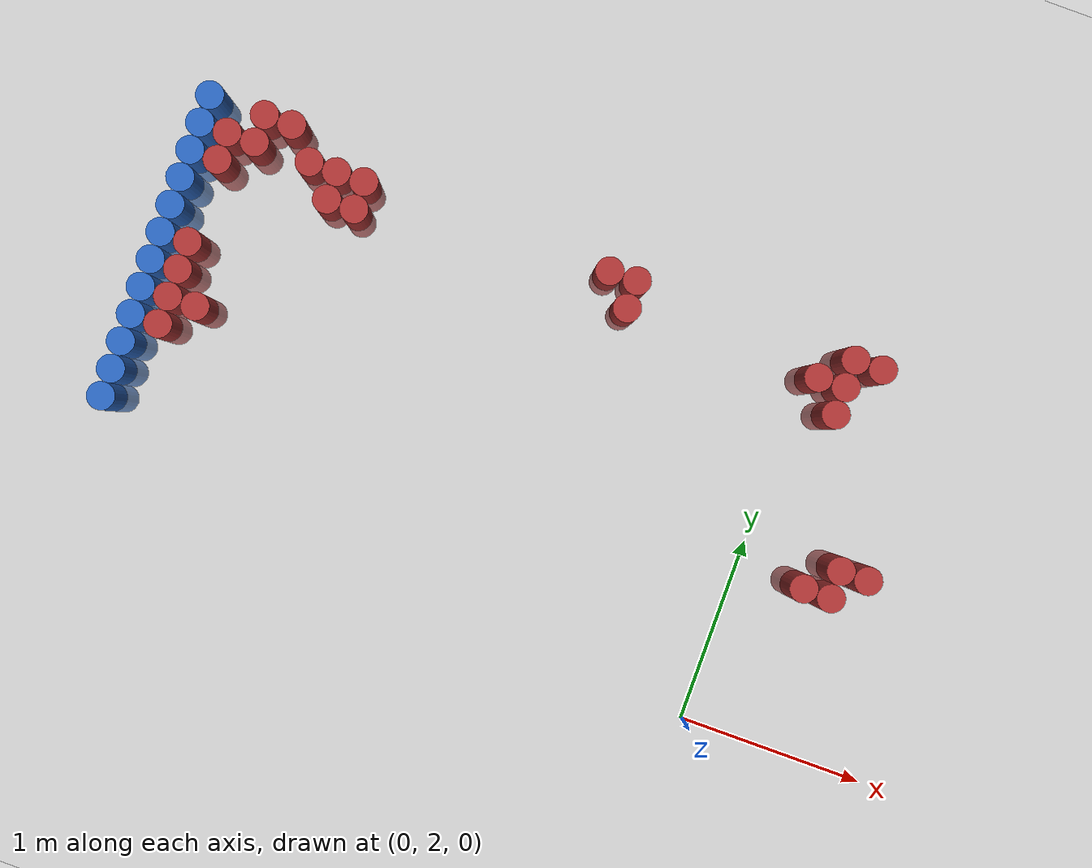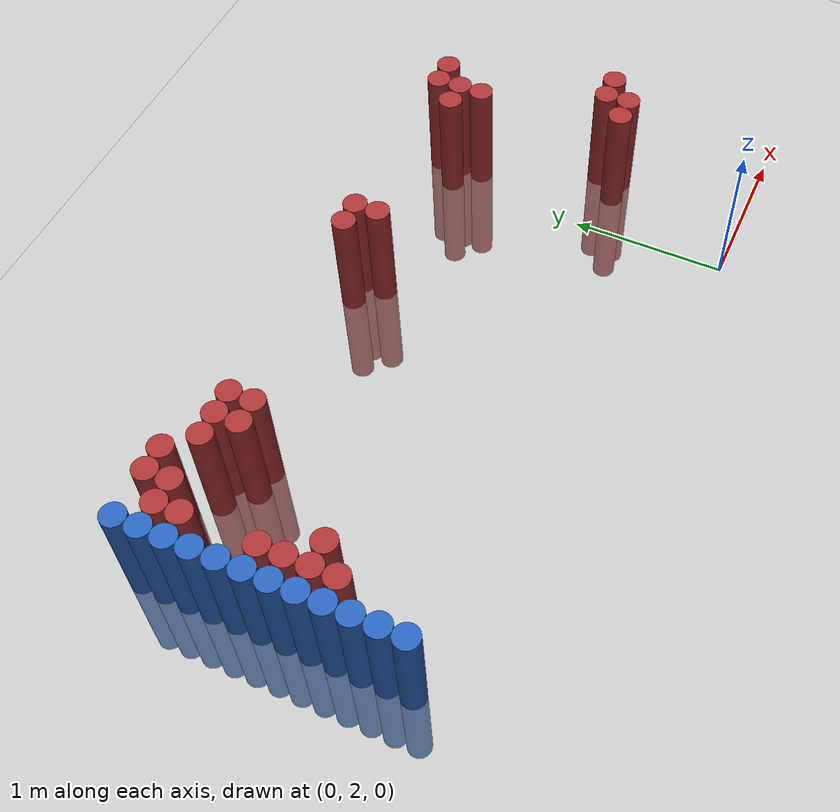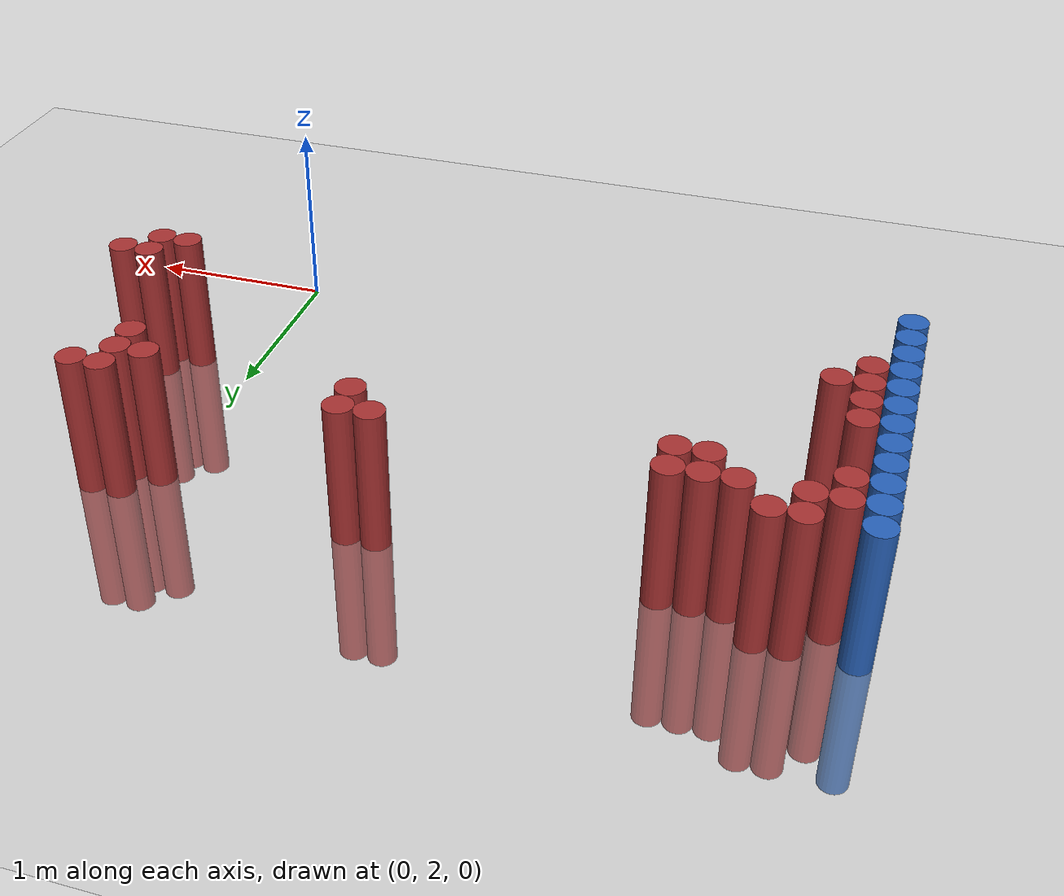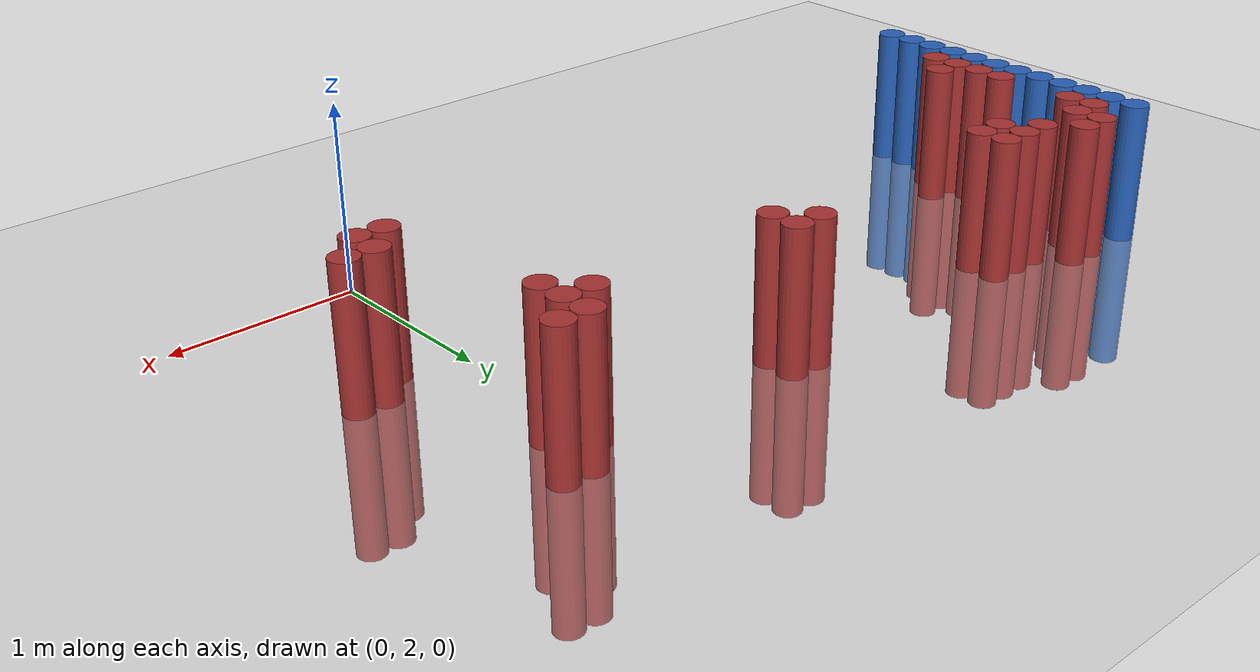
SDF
<sdf version="1.6">
 <world name="default">
  <model name="ground_plane">
   <static>1</static>
   <link name="link">
    <collision name="collision">
     <geometry><plane><normal>0 0 1</normal><size>100 100</size></plane></geometry>
     <surface><friction><ode><mu>100</mu><mu2>50</mu2></ode></friction></surface>
    </collision>
    <visual name="visual">
     <cast_shadows>0</cast_shadows>
     <geometry><plane><normal>0 0 1</normal><size>100 100</size></plane></geometry>
     <material>
      <script><uri>file://media/materials/scripts/gazebo.material</uri><name>Gazebo/Grey</name></script>
     </material>
    </visual>
   </link>
  </model>
  <model name="unit_cylinder_149">
   <static>1</static>
   <pose>-3.425000 2.575000 0.000000 0.000000 0.000000 0.000000</pose>
   <link name="link">
    <inertial>
     <mass>1</mass>
     <inertia><ixx>0.145833</ixx><ixy>0</ixy><ixz>0</ixz><iyy>0.145833</iyy><iyz>0</iyz><izz>0.125</izz></inertia>
    </inertial>
    <collision name="collision">
     <geometry><cylinder><radius>0.075000</radius><length>1.5</length></cylinder></geometry>
    </collision>
    <visual name="visual">
     <geometry><cylinder><radius>0.075000</radius><length>1.5</length></cylinder></geometry>
     <material>
      <ambient>0.152000 0.379000 0.720000 1</ambient>
      <diffuse>0.152000 0.379000 0.720000 1</diffuse>
     </material>
     <material>
      <script><name>Gazebo/Grey</name><uri>file://media/materials/scripts/gazebo.material</uri></script>
     </material>
    </visual>
   </link>
  </model>
  <model name="unit_cylinder_151">
   <static>1</static>
   <pose>-3.425000 2.725000 0.000000 0.000000 0.000000 0.000000</pose>
   <link name="link">
    <inertial>
     <mass>1</mass>
     <inertia><ixx>0.145833</ixx><ixy>0</ixy><ixz>0</ixz><iyy>0.145833</iyy><iyz>0</iyz><izz>0.125</izz></inertia>
    </inertial>
    <collision name="collision">
     <geometry><cylinder><radius>0.075000</radius><length>1.5</length></cylinder></geometry>
    </collision>
    <visual name="visual">
     <geometry><cylinder><radius>0.075000</radius><length>1.5</length></cylinder></geometry>
     <material>
      <ambient>0.152000 0.379000 0.720000 1</ambient>
      <diffuse>0.152000 0.379000 0.720000 1</diffuse>
     </material>
     <material>
      <script><name>Gazebo/Grey</name><uri>file://media/materials/scripts/gazebo.material</uri></script>
     </material>
    </visual>
   </link>
  </model>
  <model name="unit_cylinder_153">
   <static>1</static>
   <pose>-3.425000 2.875000 0.000000 0.000000 0.000000 0.000000</pose>
   <link name="link">
    <inertial>
     <mass>1</mass>
     <inertia><ixx>0.145833</ixx><ixy>0</ixy><ixz>0</ixz><iyy>0.145833</iyy><iyz>0</iyz><izz>0.125</izz></inertia>
    </inertial>
    <collision name="collision">
     <geometry><cylinder><radius>0.075000</radius><length>1.5</length></cylinder></geometry>
    </collision>
    <visual name="visual">
     <geometry><cylinder><radius>0.075000</radius><length>1.5</length></cylinder></geometry>
     <material>
      <ambient>0.152000 0.379000 0.720000 1</ambient>
      <diffuse>0.152000 0.379000 0.720000 1</diffuse>
     </material>
     <material>
      <script><name>Gazebo/Grey</name><uri>file://media/materials/scripts/gazebo.material</uri></script>
     </material>
    </visual>
   </link>
  </model>
  <model name="unit_cylinder_155">
   <static>1</static>
   <pose>-3.425000 3.025000 0.000000 0.000000 0.000000 0.000000</pose>
   <link name="link">
    <inertial>
     <mass>1</mass>
     <inertia><ixx>0.145833</ixx><ixy>0</ixy><ixz>0</ixz><iyy>0.145833</iyy><iyz>0</iyz><izz>0.125</izz></inertia>
    </inertial>
    <collision name="collision">
     <geometry><cylinder><radius>0.075000</radius><length>1.5</length></cylinder></geometry>
    </collision>
    <visual name="visual">
     <geometry><cylinder><radius>0.075000</radius><length>1.5</length></cylinder></geometry>
     <material>
      <ambient>0.152000 0.379000 0.720000 1</ambient>
      <diffuse>0.152000 0.379000 0.720000 1</diffuse>
     </material>
     <material>
      <script><name>Gazebo/Grey</name><uri>file://media/materials/scripts/gazebo.material</uri></script>
     </material>
    </visual>
   </link>
  </model>
  <model name="unit_cylinder_157">
   <static>1</static>
   <pose>-3.425000 3.175000 0.000000 0.000000 0.000000 0.000000</pose>
   <link name="link">
    <inertial>
     <mass>1</mass>
     <inertia><ixx>0.145833</ixx><ixy>0</ixy><ixz>0</ixz><iyy>0.145833</iyy><iyz>0</iyz><izz>0.125</izz></inertia>
    </inertial>
    <collision name="collision">
     <geometry><cylinder><radius>0.075000</radius><length>1.5</length></cylinder></geometry>
    </collision>
    <visual name="visual">
     <geometry><cylinder><radius>0.075000</radius><length>1.5</length></cylinder></geometry>
     <material>
      <ambient>0.152000 0.379000 0.720000 1</ambient>
      <diffuse>0.152000 0.379000 0.720000 1</diffuse>
     </material>
     <material>
      <script><name>Gazebo/Grey</name><uri>file://media/materials/scripts/gazebo.material</uri></script>
     </material>
    </visual>
   </link>
  </model>
  <model name="unit_cylinder_159">
   <static>1</static>
   <pose>-3.425000 3.325000 0.000000 0.000000 0.000000 0.000000</pose>
   <link name="link">
    <inertial>
     <mass>1</mass>
     <inertia><ixx>0.145833</ixx><ixy>0</ixy><ixz>0</ixz><iyy>0.145833</iyy><iyz>0</iyz><izz>0.125</izz></inertia>
    </inertial>
    <collision name="collision">
     <geometry><cylinder><radius>0.075000</radius><length>1.5</length></cylinder></geometry>
    </collision>
    <visual name="visual">
     <geometry><cylinder><radius>0.075000</radius><length>1.5</length></cylinder></geometry>
     <material>
      <ambient>0.152000 0.379000 0.720000 1</ambient>
      <diffuse>0.152000 0.379000 0.720000 1</diffuse>
     </material>
     <material>
      <script><name>Gazebo/Grey</name><uri>file://media/materials/scripts/gazebo.material</uri></script>
     </material>
    </visual>
   </link>
  </model>
  <model name="unit_cylinder_161">
   <static>1</static>
   <pose>-3.425000 3.475000 0.000000 0.000000 0.000000 0.000000</pose>
   <link name="link">
    <inertial>
     <mass>1</mass>
     <inertia><ixx>0.145833</ixx><ixy>0</ixy><ixz>0</ixz><iyy>0.145833</iyy><iyz>0</iyz><izz>0.125</izz></inertia>
    </inertial>
    <collision name="collision">
     <geometry><cylinder><radius>0.075000</radius><length>1.5</length></cylinder></geometry>
    </collision>
    <visual name="visual">
     <geometry><cylinder><radius>0.075000</radius><length>1.5</length></cylinder></geometry>
     <material>
      <ambient>0.152000 0.379000 0.720000 1</ambient>
      <diffuse>0.152000 0.379000 0.720000 1</diffuse>
     </material>
     <material>
      <script><name>Gazebo/Grey</name><uri>file://media/materials/scripts/gazebo.material</uri></script>
     </material>
    </visual>
   </link>
  </model>
  <model name="unit_cylinder_163">
   <static>1</static>
   <pose>-3.425000 3.625000 0.000000 0.000000 0.000000 0.000000</pose>
   <link name="link">
    <inertial>
     <mass>1</mass>
     <inertia><ixx>0.145833</ixx><ixy>0</ixy><ixz>0</ixz><iyy>0.145833</iyy><iyz>0</iyz><izz>0.125</izz></inertia>
    </inertial>
    <collision name="collision">
     <geometry><cylinder><radius>0.075000</radius><length>1.5</length></cylinder></geometry>
    </collision>
    <visual name="visual">
     <geometry><cylinder><radius>0.075000</radius><length>1.5</length></cylinder></geometry>
     <material>
      <ambient>0.152000 0.379000 0.720000 1</ambient>
      <diffuse>0.152000 0.379000 0.720000 1</diffuse>
     </material>
     <material>
      <script><name>Gazebo/Grey</name><uri>file://media/materials/scripts/gazebo.material</uri></script>
     </material>
    </visual>
   </link>
  </model>
  <model name="unit_cylinder_165">
   <static>1</static>
   <pose>-3.425000 3.775000 0.000000 0.000000 0.000000 0.000000</pose>
   <link name="link">
    <inertial>
     <mass>1</mass>
     <inertia><ixx>0.145833</ixx><ixy>0</ixy><ixz>0</ixz><iyy>0.145833</iyy><iyz>0</iyz><izz>0.125</izz></inertia>
    </inertial>
    <collision name="collision">
     <geometry><cylinder><radius>0.075000</radius><length>1.5</length></cylinder></geometry>
    </collision>
    <visual name="visual">
     <geometry><cylinder><radius>0.075000</radius><length>1.5</length></cylinder></geometry>
     <material>
      <ambient>0.152000 0.379000 0.720000 1</ambient>
      <diffuse>0.152000 0.379000 0.720000 1</diffuse>
     </material>
     <material>
      <script><name>Gazebo/Grey</name><uri>file://media/materials/scripts/gazebo.material</uri></script>
     </material>
    </visual>
   </link>
  </model>
  <model name="unit_cylinder_167">
   <static>1</static>
   <pose>-3.425000 3.925000 0.000000 0.000000 0.000000 0.000000</pose>
   <link name="link">
    <inertial>
     <mass>1</mass>
     <inertia><ixx>0.145833</ixx><ixy>0</ixy><ixz>0</ixz><iyy>0.145833</iyy><iyz>0</iyz><izz>0.125</izz></inertia>
    </inertial>
    <collision name="collision">
     <geometry><cylinder><radius>0.075000</radius><length>1.5</length></cylinder></geometry>
    </collision>
    <visual name="visual">
     <geometry><cylinder><radius>0.075000</radius><length>1.5</length></cylinder></geometry>
     <material>
      <ambient>0.152000 0.379000 0.720000 1</ambient>
      <diffuse>0.152000 0.379000 0.720000 1</diffuse>
     </material>
     <material>
      <script><name>Gazebo/Grey</name><uri>file://media/materials/scripts/gazebo.material</uri></script>
     </material>
    </visual>
   </link>
  </model>
  <model name="unit_cylinder_169">
   <static>1</static>
   <pose>-3.425000 4.075000 0.000000 0.000000 0.000000 0.000000</pose>
   <link name="link">
    <inertial>
     <mass>1</mass>
     <inertia><ixx>0.145833</ixx><ixy>0</ixy><ixz>0</ixz><iyy>0.145833</iyy><iyz>0</iyz><izz>0.125</izz></inertia>
    </inertial>
    <collision name="collision">
     <geometry><cylinder><radius>0.075000</radius><length>1.5</length></cylinder></geometry>
    </collision>
    <visual name="visual">
     <geometry><cylinder><radius>0.075000</radius><length>1.5</length></cylinder></geometry>
     <material>
      <ambient>0.152000 0.379000 0.720000 1</ambient>
      <diffuse>0.152000 0.379000 0.720000 1</diffuse>
     </material>
     <material>
      <script><name>Gazebo/Grey</name><uri>file://media/materials/scripts/gazebo.material</uri></script>
     </material>
    </visual>
   </link>
  </model>
  <model name="unit_cylinder_171">
   <static>1</static>
   <pose>-3.425000 4.225000 0.000000 0.000000 0.000000 0.000000</pose>
   <link name="link">
    <inertial>
     <mass>1</mass>
     <inertia><ixx>0.145833</ixx><ixy>0</ixy><ixz>0</ixz><iyy>0.145833</iyy><iyz>0</iyz><izz>0.125</izz></inertia>
    </inertial>
    <collision name="collision">
     <geometry><cylinder><radius>0.075000</radius><length>1.5</length></cylinder></geometry>
    </collision>
    <visual name="visual">
     <geometry><cylinder><radius>0.075000</radius><length>1.5</length></cylinder></geometry>
     <material>
      <ambient>0.152000 0.379000 0.720000 1</ambient>
      <diffuse>0.152000 0.379000 0.720000 1</diffuse>
     </material>
     <material>
      <script><name>Gazebo/Grey</name><uri>file://media/materials/scripts/gazebo.material</uri></script>
     </material>
    </visual>
   </link>
  </model>
  <model name="unit_cylinder_238">
   <static>1</static>
   <pose>-3.425000 2.575000 0.000000 0.000000 0.000000 0.000000</pose>
   <link name="link">
    <inertial>
     <mass>1</mass>
     <inertia><ixx>0.145833</ixx><ixy>0</ixy><ixz>0</ixz><iyy>0.145833</iyy><iyz>0</iyz><izz>0.125</izz></inertia>
    </inertial>
    <collision name="collision">
     <geometry><cylinder><radius>0.075000</radius><length>1.5</length></cylinder></geometry>
    </collision>
    <visual name="visual">
     <geometry><cylinder><radius>0.075000</radius><length>1.5</length></cylinder></geometry>
     <material>
      <ambient>0.152000 0.379000 0.720000 1</ambient>
      <diffuse>0.152000 0.379000 0.720000 1</diffuse>
     </material>
     <material>
      <script><name>Gazebo/Grey</name><uri>file://media/materials/scripts/gazebo.material</uri></script>
     </material>
    </visual>
   </link>
  </model>
  <model name="unit_cylinder_239">
   <static>1</static>
   <pose>-3.425000 2.725000 0.000000 0.000000 0.000000 0.000000</pose>
   <link name="link">
    <inertial>
     <mass>1</mass>
     <inertia><ixx>0.145833</ixx><ixy>0</ixy><ixz>0</ixz><iyy>0.145833</iyy><iyz>0</iyz><izz>0.125</izz></inertia>
    </inertial>
    <collision name="collision">
     <geometry><cylinder><radius>0.075000</radius><length>1.5</length></cylinder></geometry>
    </collision>
    <visual name="visual">
     <geometry><cylinder><radius>0.075000</radius><length>1.5</length></cylinder></geometry>
     <material>
      <ambient>0.152000 0.379000 0.720000 1</ambient>
      <diffuse>0.152000 0.379000 0.720000 1</diffuse>
     </material>
     <material>
      <script><name>Gazebo/Grey</name><uri>file://media/materials/scripts/gazebo.material</uri></script>
     </material>
    </visual>
   </link>
  </model>
  <model name="unit_cylinder_240">
   <static>1</static>
   <pose>-3.425000 2.875000 0.000000 0.000000 0.000000 0.000000</pose>
   <link name="link">
    <inertial>
     <mass>1</mass>
     <inertia><ixx>0.145833</ixx><ixy>0</ixy><ixz>0</ixz><iyy>0.145833</iyy><iyz>0</iyz><izz>0.125</izz></inertia>
    </inertial>
    <collision name="collision">
     <geometry><cylinder><radius>0.075000</radius><length>1.5</length></cylinder></geometry>
    </collision>
    <visual name="visual">
     <geometry><cylinder><radius>0.075000</radius><length>1.5</length></cylinder></geometry>
     <material>
      <ambient>0.152000 0.379000 0.720000 1</ambient>
      <diffuse>0.152000 0.379000 0.720000 1</diffuse>
     </material>
     <material>
      <script><name>Gazebo/Grey</name><uri>file://media/materials/scripts/gazebo.material</uri></script>
     </material>
    </visual>
   </link>
  </model>
  <model name="unit_cylinder_241">
   <static>1</static>
   <pose>-3.425000 3.025000 0.000000 0.000000 0.000000 0.000000</pose>
   <link name="link">
    <inertial>
     <mass>1</mass>
     <inertia><ixx>0.145833</ixx><ixy>0</ixy><ixz>0</ixz><iyy>0.145833</iyy><iyz>0</iyz><izz>0.125</izz></inertia>
    </inertial>
    <collision name="collision">
     <geometry><cylinder><radius>0.075000</radius><length>1.5</length></cylinder></geometry>
    </collision>
    <visual name="visual">
     <geometry><cylinder><radius>0.075000</radius><length>1.5</length></cylinder></geometry>
     <material>
      <ambient>0.152000 0.379000 0.720000 1</ambient>
      <diffuse>0.152000 0.379000 0.720000 1</diffuse>
     </material>
     <material>
      <script><name>Gazebo/Grey</name><uri>file://media/materials/scripts/gazebo.material</uri></script>
     </material>
    </visual>
   </link>
  </model>
  <model name="unit_cylinder_242">
   <static>1</static>
   <pose>-3.425000 3.175000 0.000000 0.000000 0.000000 0.000000</pose>
   <link name="link">
    <inertial>
     <mass>1</mass>
     <inertia><ixx>0.145833</ixx><ixy>0</ixy><ixz>0</ixz><iyy>0.145833</iyy><iyz>0</iyz><izz>0.125</izz></inertia>
    </inertial>
    <collision name="collision">
     <geometry><cylinder><radius>0.075000</radius><length>1.5</length></cylinder></geometry>
    </collision>
    <visual name="visual">
     <geometry><cylinder><radius>0.075000</radius><length>1.5</length></cylinder></geometry>
     <material>
      <ambient>0.152000 0.379000 0.720000 1</ambient>
      <diffuse>0.152000 0.379000 0.720000 1</diffuse>
     </material>
     <material>
      <script><name>Gazebo/Grey</name><uri>file://media/materials/scripts/gazebo.material</uri></script>
     </material>
    </visual>
   </link>
  </model>
  <model name="unit_cylinder_243">
   <static>1</static>
   <pose>-3.425000 3.325000 0.000000 0.000000 0.000000 0.000000</pose>
   <link name="link">
    <inertial>
     <mass>1</mass>
     <inertia><ixx>0.145833</ixx><ixy>0</ixy><ixz>0</ixz><iyy>0.145833</iyy><iyz>0</iyz><izz>0.125</izz></inertia>
    </inertial>
    <collision name="collision">
     <geometry><cylinder><radius>0.075000</radius><length>1.5</length></cylinder></geometry>
    </collision>
    <visual name="visual">
     <geometry><cylinder><radius>0.075000</radius><length>1.5</length></cylinder></geometry>
     <material>
      <ambient>0.152000 0.379000 0.720000 1</ambient>
      <diffuse>0.152000 0.379000 0.720000 1</diffuse>
     </material>
     <material>
      <script><name>Gazebo/Grey</name><uri>file://media/materials/scripts/gazebo.material</uri></script>
     </material>
    </visual>
   </link>
  </model>
  <model name="unit_cylinder_244">
   <static>1</static>
   <pose>-3.425000 3.475000 0.000000 0.000000 0.000000 0.000000</pose>
   <link name="link">
    <inertial>
     <mass>1</mass>
     <inertia><ixx>0.145833</ixx><ixy>0</ixy><ixz>0</ixz><iyy>0.145833</iyy><iyz>0</iyz><izz>0.125</izz></inertia>
    </inertial>
    <collision name="collision">
     <geometry><cylinder><radius>0.075000</radius><length>1.5</length></cylinder></geometry>
    </collision>
    <visual name="visual">
     <geometry><cylinder><radius>0.075000</radius><length>1.5</length></cylinder></geometry>
     <material>
      <ambient>0.152000 0.379000 0.720000 1</ambient>
      <diffuse>0.152000 0.379000 0.720000 1</diffuse>
     </material>
     <material>
      <script><name>Gazebo/Grey</name><uri>file://media/materials/scripts/gazebo.material</uri></script>
     </material>
    </visual>
   </link>
  </model>
  <model name="unit_cylinder_245">
   <static>1</static>
   <pose>-3.425000 3.625000 0.000000 0.000000 0.000000 0.000000</pose>
   <link name="link">
    <inertial>
     <mass>1</mass>
     <inertia><ixx>0.145833</ixx><ixy>0</ixy><ixz>0</ixz><iyy>0.145833</iyy><iyz>0</iyz><izz>0.125</izz></inertia>
    </inertial>
    <collision name="collision">
     <geometry><cylinder><radius>0.075000</radius><length>1.5</length></cylinder></geometry>
    </collision>
    <visual name="visual">
     <geometry><cylinder><radius>0.075000</radius><length>1.5</length></cylinder></geometry>
     <material>
      <ambient>0.152000 0.379000 0.720000 1</ambient>
      <diffuse>0.152000 0.379000 0.720000 1</diffuse>
     </material>
     <material>
      <script><name>Gazebo/Grey</name><uri>file://media/materials/scripts/gazebo.material</uri></script>
     </material>
    </visual>
   </link>
  </model>
  <model name="unit_cylinder_246">
   <static>1</static>
   <pose>-3.425000 3.775000 0.000000 0.000000 0.000000 0.000000</pose>
   <link name="link">
    <inertial>
     <mass>1</mass>
     <inertia><ixx>0.145833</ixx><ixy>0</ixy><ixz>0</ixz><iyy>0.145833</iyy><iyz>0</iyz><izz>0.125</izz></inertia>
    </inertial>
    <collision name="collision">
     <geometry><cylinder><radius>0.075000</radius><length>1.5</length></cylinder></geometry>
    </collision>
    <visual name="visual">
     <geometry><cylinder><radius>0.075000</radius><length>1.5</length></cylinder></geometry>
     <material>
      <ambient>0.152000 0.379000 0.720000 1</ambient>
      <diffuse>0.152000 0.379000 0.720000 1</diffuse>
     </material>
     <material>
      <script><name>Gazebo/Grey</name><uri>file://media/materials/scripts/gazebo.material</uri></script>
     </material>
    </visual>
   </link>
  </model>
  <model name="unit_cylinder_247">
   <static>1</static>
   <pose>-3.425000 3.925000 0.000000 0.000000 0.000000 0.000000</pose>
   <link name="link">
    <inertial>
     <mass>1</mass>
     <inertia><ixx>0.145833</ixx><ixy>0</ixy><ixz>0</ixz><iyy>0.145833</iyy><iyz>0</iyz><izz>0.125</izz></inertia>
    </inertial>
    <collision name="collision">
     <geometry><cylinder><radius>0.075000</radius><length>1.5</length></cylinder></geometry>
    </collision>
    <visual name="visual">
     <geometry><cylinder><radius>0.075000</radius><length>1.5</length></cylinder></geometry>
     <material>
      <ambient>0.152000 0.379000 0.720000 1</ambient>
      <diffuse>0.152000 0.379000 0.720000 1</diffuse>
     </material>
     <material>
      <script><name>Gazebo/Grey</name><uri>file://media/materials/scripts/gazebo.material</uri></script>
     </material>
    </visual>
   </link>
  </model>
  <model name="unit_cylinder_248">
   <static>1</static>
   <pose>-3.425000 4.075000 0.000000 0.000000 0.000000 0.000000</pose>
   <link name="link">
    <inertial>
     <mass>1</mass>
     <inertia><ixx>0.145833</ixx><ixy>0</ixy><ixz>0</ixz><iyy>0.145833</iyy><iyz>0</iyz><izz>0.125</izz></inertia>
    </inertial>
    <collision name="collision">
     <geometry><cylinder><radius>0.075000</radius><length>1.5</length></cylinder></geometry>
    </collision>
    <visual name="visual">
     <geometry><cylinder><radius>0.075000</radius><length>1.5</length></cylinder></geometry>
     <material>
      <ambient>0.152000 0.379000 0.720000 1</ambient>
      <diffuse>0.152000 0.379000 0.720000 1</diffuse>
     </material>
     <material>
      <script><name>Gazebo/Grey</name><uri>file://media/materials/scripts/gazebo.material</uri></script>
     </material>
    </visual>
   </link>
  </model>
  <model name="unit_cylinder_249">
   <static>1</static>
   <pose>-3.425000 4.225000 0.000000 0.000000 0.000000 0.000000</pose>
   <link name="link">
    <inertial>
     <mass>1</mass>
     <inertia><ixx>0.145833</ixx><ixy>0</ixy><ixz>0</ixz><iyy>0.145833</iyy><iyz>0</iyz><izz>0.125</izz></inertia>
    </inertial>
    <collision name="collision">
     <geometry><cylinder><radius>0.075000</radius><length>1.5</length></cylinder></geometry>
    </collision>
    <visual name="visual">
     <geometry><cylinder><radius>0.075000</radius><length>1.5</length></cylinder></geometry>
     <material>
      <ambient>0.152000 0.379000 0.720000 1</ambient>
      <diffuse>0.152000 0.379000 0.720000 1</diffuse>
     </material>
     <material>
      <script><name>Gazebo/Grey</name><uri>file://media/materials/scripts/gazebo.material</uri></script>
     </material>
    </visual>
   </link>
  </model>
  <model name="unit_cylinder_267">
   <static>1</static>
   <pose>-3.275000 3.025000 0.000000 0.000000 0.000000 0.000000</pose>
   <link name="link">
    <inertial>
     <mass>1</mass>
     <inertia><ixx>0.145833</ixx><ixy>0</ixy><ixz>0</ixz><iyy>0.145833</iyy><iyz>0</iyz><izz>0.125</izz></inertia>
    </inertial>
    <collision name="collision">
     <geometry><cylinder><radius>0.075000</radius><length>1.5</length></cylinder></geometry>
    </collision>
    <visual name="visual">
     <geometry><cylinder><radius>0.075000</radius><length>1.5</length></cylinder></geometry>
     <material>
      <ambient>0.648000 0.192000 0.192000 1</ambient>
      <diffuse>0.648000 0.192000 0.192000 1</diffuse>
     </material>
     <material>
      <script><name>Gazebo/Grey</name><uri>file://media/materials/scripts/gazebo.material</uri></script>
     </material>
    </visual>
   </link>
  </model>
  <model name="unit_cylinder_268">
   <static>1</static>
   <pose>-3.275000 3.175000 0.000000 0.000000 0.000000 0.000000</pose>
   <link name="link">
    <inertial>
     <mass>1</mass>
     <inertia><ixx>0.145833</ixx><ixy>0</ixy><ixz>0</ixz><iyy>0.145833</iyy><iyz>0</iyz><izz>0.125</izz></inertia>
    </inertial>
    <collision name="collision">
     <geometry><cylinder><radius>0.075000</radius><length>1.5</length></cylinder></geometry>
    </collision>
    <visual name="visual">
     <geometry><cylinder><radius>0.075000</radius><length>1.5</length></cylinder></geometry>
     <material>
      <ambient>0.648000 0.192000 0.192000 1</ambient>
      <diffuse>0.648000 0.192000 0.192000 1</diffuse>
     </material>
     <material>
      <script><name>Gazebo/Grey</name><uri>file://media/materials/scripts/gazebo.material</uri></script>
     </material>
    </visual>
   </link>
  </model>
  <model name="unit_cylinder_269">
   <static>1</static>
   <pose>-3.275000 3.325000 0.000000 0.000000 0.000000 0.000000</pose>
   <link name="link">
    <inertial>
     <mass>1</mass>
     <inertia><ixx>0.145833</ixx><ixy>0</ixy><ixz>0</ixz><iyy>0.145833</iyy><iyz>0</iyz><izz>0.125</izz></inertia>
    </inertial>
    <collision name="collision">
     <geometry><cylinder><radius>0.075000</radius><length>1.5</length></cylinder></geometry>
    </collision>
    <visual name="visual">
     <geometry><cylinder><radius>0.075000</radius><length>1.5</length></cylinder></geometry>
     <material>
      <ambient>0.648000 0.192000 0.192000 1</ambient>
      <diffuse>0.648000 0.192000 0.192000 1</diffuse>
     </material>
     <material>
      <script><name>Gazebo/Grey</name><uri>file://media/materials/scripts/gazebo.material</uri></script>
     </material>
    </visual>
   </link>
  </model>
  <model name="unit_cylinder_270">
   <static>1</static>
   <pose>-3.275000 3.475000 0.000000 0.000000 0.000000 0.000000</pose>
   <link name="link">
    <inertial>
     <mass>1</mass>
     <inertia><ixx>0.145833</ixx><ixy>0</ixy><ixz>0</ixz><iyy>0.145833</iyy><iyz>0</iyz><izz>0.125</izz></inertia>
    </inertial>
    <collision name="collision">
     <geometry><cylinder><radius>0.075000</radius><length>1.5</length></cylinder></geometry>
    </collision>
    <visual name="visual">
     <geometry><cylinder><radius>0.075000</radius><length>1.5</length></cylinder></geometry>
     <material>
      <ambient>0.648000 0.192000 0.192000 1</ambient>
      <diffuse>0.648000 0.192000 0.192000 1</diffuse>
     </material>
     <material>
      <script><name>Gazebo/Grey</name><uri>file://media/materials/scripts/gazebo.material</uri></script>
     </material>
    </visual>
   </link>
  </model>
  <model name="unit_cylinder_271">
   <static>1</static>
   <pose>-3.275000 3.925000 0.000000 0.000000 0.000000 0.000000</pose>
   <link name="link">
    <inertial>
     <mass>1</mass>
     <inertia><ixx>0.145833</ixx><ixy>0</ixy><ixz>0</ixz><iyy>0.145833</iyy><iyz>0</iyz><izz>0.125</izz></inertia>
    </inertial>
    <collision name="collision">
     <geometry><cylinder><radius>0.075000</radius><length>1.5</length></cylinder></geometry>
    </collision>
    <visual name="visual">
     <geometry><cylinder><radius>0.075000</radius><length>1.5</length></cylinder></geometry>
     <material>
      <ambient>0.648000 0.192000 0.192000 1</ambient>
      <diffuse>0.648000 0.192000 0.192000 1</diffuse>
     </material>
     <material>
      <script><name>Gazebo/Grey</name><uri>file://media/materials/scripts/gazebo.material</uri></script>
     </material>
    </visual>
   </link>
  </model>
  <model name="unit_cylinder_272">
   <static>1</static>
   <pose>-3.275000 4.075000 0.000000 0.000000 0.000000 0.000000</pose>
   <link name="link">
    <inertial>
     <mass>1</mass>
     <inertia><ixx>0.145833</ixx><ixy>0</ixy><ixz>0</ixz><iyy>0.145833</iyy><iyz>0</iyz><izz>0.125</izz></inertia>
    </inertial>
    <collision name="collision">
     <geometry><cylinder><radius>0.075000</radius><length>1.5</length></cylinder></geometry>
    </collision>
    <visual name="visual">
     <geometry><cylinder><radius>0.075000</radius><length>1.5</length></cylinder></geometry>
     <material>
      <ambient>0.648000 0.192000 0.192000 1</ambient>
      <diffuse>0.648000 0.192000 0.192000 1</diffuse>
     </material>
     <material>
      <script><name>Gazebo/Grey</name><uri>file://media/materials/scripts/gazebo.material</uri></script>
     </material>
    </visual>
   </link>
  </model>
  <model name="unit_cylinder_283">
   <static>1</static>
   <pose>-3.125000 3.175000 0.000000 0.000000 0.000000 0.000000</pose>
   <link name="link">
    <inertial>
     <mass>1</mass>
     <inertia><ixx>0.145833</ixx><ixy>0</ixy><ixz>0</ixz><iyy>0.145833</iyy><iyz>0</iyz><izz>0.125</izz></inertia>
    </inertial>
    <collision name="collision">
     <geometry><cylinder><radius>0.075000</radius><length>1.5</length></cylinder></geometry>
    </collision>
    <visual name="visual">
     <geometry><cylinder><radius>0.075000</radius><length>1.5</length></cylinder></geometry>
     <material>
      <ambient>0.648000 0.192000 0.192000 1</ambient>
      <diffuse>0.648000 0.192000 0.192000 1</diffuse>
     </material>
     <material>
      <script><name>Gazebo/Grey</name><uri>file://media/materials/scripts/gazebo.material</uri></script>
     </material>
    </visual>
   </link>
  </model>
  <model name="unit_cylinder_284">
   <static>1</static>
   <pose>-3.125000 4.075000 0.000000 0.000000 0.000000 0.000000</pose>
   <link name="link">
    <inertial>
     <mass>1</mass>
     <inertia><ixx>0.145833</ixx><ixy>0</ixy><ixz>0</ixz><iyy>0.145833</iyy><iyz>0</iyz><izz>0.125</izz></inertia>
    </inertial>
    <collision name="collision">
     <geometry><cylinder><radius>0.075000</radius><length>1.5</length></cylinder></geometry>
    </collision>
    <visual name="visual">
     <geometry><cylinder><radius>0.075000</radius><length>1.5</length></cylinder></geometry>
     <material>
      <ambient>0.648000 0.192000 0.192000 1</ambient>
      <diffuse>0.648000 0.192000 0.192000 1</diffuse>
     </material>
     <material>
      <script><name>Gazebo/Grey</name><uri>file://media/materials/scripts/gazebo.material</uri></script>
     </material>
    </visual>
   </link>
  </model>
  <model name="unit_cylinder_285">
   <static>1</static>
   <pose>-3.125000 4.225000 0.000000 0.000000 0.000000 0.000000</pose>
   <link name="link">
    <inertial>
     <mass>1</mass>
     <inertia><ixx>0.145833</ixx><ixy>0</ixy><ixz>0</ixz><iyy>0.145833</iyy><iyz>0</iyz><izz>0.125</izz></inertia>
    </inertial>
    <collision name="collision">
     <geometry><cylinder><radius>0.075000</radius><length>1.5</length></cylinder></geometry>
    </collision>
    <visual name="visual">
     <geometry><cylinder><radius>0.075000</radius><length>1.5</length></cylinder></geometry>
     <material>
      <ambient>0.648000 0.192000 0.192000 1</ambient>
      <diffuse>0.648000 0.192000 0.192000 1</diffuse>
     </material>
     <material>
      <script><name>Gazebo/Grey</name><uri>file://media/materials/scripts/gazebo.material</uri></script>
     </material>
    </visual>
   </link>
  </model>
  <model name="unit_cylinder_293">
   <static>1</static>
   <pose>-2.975000 4.225000 0.000000 0.000000 0.000000 0.000000</pose>
   <link name="link">
    <inertial>
     <mass>1</mass>
     <inertia><ixx>0.145833</ixx><ixy>0</ixy><ixz>0</ixz><iyy>0.145833</iyy><iyz>0</iyz><izz>0.125</izz></inertia>
    </inertial>
    <collision name="collision">
     <geometry><cylinder><radius>0.075000</radius><length>1.5</length></cylinder></geometry>
    </collision>
    <visual name="visual">
     <geometry><cylinder><radius>0.075000</radius><length>1.5</length></cylinder></geometry>
     <material>
      <ambient>0.648000 0.192000 0.192000 1</ambient>
      <diffuse>0.648000 0.192000 0.192000 1</diffuse>
     </material>
     <material>
      <script><name>Gazebo/Grey</name><uri>file://media/materials/scripts/gazebo.material</uri></script>
     </material>
    </visual>
   </link>
  </model>
  <model name="unit_cylinder_296">
   <static>1</static>
   <pose>-2.825000 4.075000 0.000000 0.000000 0.000000 0.000000</pose>
   <link name="link">
    <inertial>
     <mass>1</mass>
     <inertia><ixx>0.145833</ixx><ixy>0</ixy><ixz>0</ixz><iyy>0.145833</iyy><iyz>0</iyz><izz>0.125</izz></inertia>
    </inertial>
    <collision name="collision">
     <geometry><cylinder><radius>0.075000</radius><length>1.5</length></cylinder></geometry>
    </collision>
    <visual name="visual">
     <geometry><cylinder><radius>0.075000</radius><length>1.5</length></cylinder></geometry>
     <material>
      <ambient>0.648000 0.192000 0.192000 1</ambient>
      <diffuse>0.648000 0.192000 0.192000 1</diffuse>
     </material>
     <material>
      <script><name>Gazebo/Grey</name><uri>file://media/materials/scripts/gazebo.material</uri></script>
     </material>
    </visual>
   </link>
  </model>
  <model name="unit_cylinder_304">
   <static>1</static>
   <pose>-2.675000 3.925000 0.000000 0.000000 0.000000 0.000000</pose>
   <link name="link">
    <inertial>
     <mass>1</mass>
     <inertia><ixx>0.145833</ixx><ixy>0</ixy><ixz>0</ixz><iyy>0.145833</iyy><iyz>0</iyz><izz>0.125</izz></inertia>
    </inertial>
    <collision name="collision">
     <geometry><cylinder><radius>0.075000</radius><length>1.5</length></cylinder></geometry>
    </collision>
    <visual name="visual">
     <geometry><cylinder><radius>0.075000</radius><length>1.5</length></cylinder></geometry>
     <material>
      <ambient>0.648000 0.192000 0.192000 1</ambient>
      <diffuse>0.648000 0.192000 0.192000 1</diffuse>
     </material>
     <material>
      <script><name>Gazebo/Grey</name><uri>file://media/materials/scripts/gazebo.material</uri></script>
     </material>
    </visual>
   </link>
  </model>
  <model name="unit_cylinder_305">
   <static>1</static>
   <pose>-2.675000 4.075000 0.000000 0.000000 0.000000 0.000000</pose>
   <link name="link">
    <inertial>
     <mass>1</mass>
     <inertia><ixx>0.145833</ixx><ixy>0</ixy><ixz>0</ixz><iyy>0.145833</iyy><iyz>0</iyz><izz>0.125</izz></inertia>
    </inertial>
    <collision name="collision">
     <geometry><cylinder><radius>0.075000</radius><length>1.5</length></cylinder></geometry>
    </collision>
    <visual name="visual">
     <geometry><cylinder><radius>0.075000</radius><length>1.5</length></cylinder></geometry>
     <material>
      <ambient>0.648000 0.192000 0.192000 1</ambient>
      <diffuse>0.648000 0.192000 0.192000 1</diffuse>
     </material>
     <material>
      <script><name>Gazebo/Grey</name><uri>file://media/materials/scripts/gazebo.material</uri></script>
     </material>
    </visual>
   </link>
  </model>
  <model name="unit_cylinder_311">
   <static>1</static>
   <pose>-2.525000 3.925000 0.000000 0.000000 0.000000 0.000000</pose>
   <link name="link">
    <inertial>
     <mass>1</mass>
     <inertia><ixx>0.145833</ixx><ixy>0</ixy><ixz>0</ixz><iyy>0.145833</iyy><iyz>0</iyz><izz>0.125</izz></inertia>
    </inertial>
    <collision name="collision">
     <geometry><cylinder><radius>0.075000</radius><length>1.5</length></cylinder></geometry>
    </collision>
    <visual name="visual">
     <geometry><cylinder><radius>0.075000</radius><length>1.5</length></cylinder></geometry>
     <material>
      <ambient>0.648000 0.192000 0.192000 1</ambient>
      <diffuse>0.648000 0.192000 0.192000 1</diffuse>
     </material>
     <material>
      <script><name>Gazebo/Grey</name><uri>file://media/materials/scripts/gazebo.material</uri></script>
     </material>
    </visual>
   </link>
  </model>
  <model name="unit_cylinder_312">
   <static>1</static>
   <pose>-2.525000 4.075000 0.000000 0.000000 0.000000 0.000000</pose>
   <link name="link">
    <inertial>
     <mass>1</mass>
     <inertia><ixx>0.145833</ixx><ixy>0</ixy><ixz>0</ixz><iyy>0.145833</iyy><iyz>0</iyz><izz>0.125</izz></inertia>
    </inertial>
    <collision name="collision">
     <geometry><cylinder><radius>0.075000</radius><length>1.5</length></cylinder></geometry>
    </collision>
    <visual name="visual">
     <geometry><cylinder><radius>0.075000</radius><length>1.5</length></cylinder></geometry>
     <material>
      <ambient>0.648000 0.192000 0.192000 1</ambient>
      <diffuse>0.648000 0.192000 0.192000 1</diffuse>
     </material>
     <material>
      <script><name>Gazebo/Grey</name><uri>file://media/materials/scripts/gazebo.material</uri></script>
     </material>
    </visual>
   </link>
  </model>
  <model name="unit_cylinder_327">
   <static>1</static>
   <pose>-1.175000 4.075000 0.000000 0.000000 0.000000 0.000000</pose>
   <link name="link">
    <inertial>
     <mass>1</mass>
     <inertia><ixx>0.145833</ixx><ixy>0</ixy><ixz>0</ixz><iyy>0.145833</iyy><iyz>0</iyz><izz>0.125</izz></inertia>
    </inertial>
    <collision name="collision">
     <geometry><cylinder><radius>0.075000</radius><length>1.5</length></cylinder></geometry>
    </collision>
    <visual name="visual">
     <geometry><cylinder><radius>0.075000</radius><length>1.5</length></cylinder></geometry>
     <material>
      <ambient>0.648000 0.192000 0.192000 1</ambient>
      <diffuse>0.648000 0.192000 0.192000 1</diffuse>
     </material>
     <material>
      <script><name>Gazebo/Grey</name><uri>file://media/materials/scripts/gazebo.material</uri></script>
     </material>
    </visual>
   </link>
  </model>
  <model name="unit_cylinder_340">
   <static>1</static>
   <pose>-1.025000 3.925000 0.000000 0.000000 0.000000 0.000000</pose>
   <link name="link">
    <inertial>
     <mass>1</mass>
     <inertia><ixx>0.145833</ixx><ixy>0</ixy><ixz>0</ixz><iyy>0.145833</iyy><iyz>0</iyz><izz>0.125</izz></inertia>
    </inertial>
    <collision name="collision">
     <geometry><cylinder><radius>0.075000</radius><length>1.5</length></cylinder></geometry>
    </collision>
    <visual name="visual">
     <geometry><cylinder><radius>0.075000</radius><length>1.5</length></cylinder></geometry>
     <material>
      <ambient>0.648000 0.192000 0.192000 1</ambient>
      <diffuse>0.648000 0.192000 0.192000 1</diffuse>
     </material>
     <material>
      <script><name>Gazebo/Grey</name><uri>file://media/materials/scripts/gazebo.material</uri></script>
     </material>
    </visual>
   </link>
  </model>
  <model name="unit_cylinder_341">
   <static>1</static>
   <pose>-1.025000 4.075000 0.000000 0.000000 0.000000 0.000000</pose>
   <link name="link">
    <inertial>
     <mass>1</mass>
     <inertia><ixx>0.145833</ixx><ixy>0</ixy><ixz>0</ixz><iyy>0.145833</iyy><iyz>0</iyz><izz>0.125</izz></inertia>
    </inertial>
    <collision name="collision">
     <geometry><cylinder><radius>0.075000</radius><length>1.5</length></cylinder></geometry>
    </collision>
    <visual name="visual">
     <geometry><cylinder><radius>0.075000</radius><length>1.5</length></cylinder></geometry>
     <material>
      <ambient>0.648000 0.192000 0.192000 1</ambient>
      <diffuse>0.648000 0.192000 0.192000 1</diffuse>
     </material>
     <material>
      <script><name>Gazebo/Grey</name><uri>file://media/materials/scripts/gazebo.material</uri></script>
     </material>
    </visual>
   </link>
  </model>
  <model name="unit_cylinder_355">
   <static>1</static>
   <pose>0.025000 3.925000 0.000000 0.000000 0.000000 0.000000</pose>
   <link name="link">
    <inertial>
     <mass>1</mass>
     <inertia><ixx>0.145833</ixx><ixy>0</ixy><ixz>0</ixz><iyy>0.145833</iyy><iyz>0</iyz><izz>0.125</izz></inertia>
    </inertial>
    <collision name="collision">
     <geometry><cylinder><radius>0.075000</radius><length>1.5</length></cylinder></geometry>
    </collision>
    <visual name="visual">
     <geometry><cylinder><radius>0.075000</radius><length>1.5</length></cylinder></geometry>
     <material>
      <ambient>0.648000 0.192000 0.192000 1</ambient>
      <diffuse>0.648000 0.192000 0.192000 1</diffuse>
     </material>
     <material>
      <script><name>Gazebo/Grey</name><uri>file://media/materials/scripts/gazebo.material</uri></script>
     </material>
    </visual>
   </link>
  </model>
  <model name="unit_cylinder_359">
   <static>1</static>
   <pose>0.175000 3.775000 0.000000 0.000000 0.000000 0.000000</pose>
   <link name="link">
    <inertial>
     <mass>1</mass>
     <inertia><ixx>0.145833</ixx><ixy>0</ixy><ixz>0</ixz><iyy>0.145833</iyy><iyz>0</iyz><izz>0.125</izz></inertia>
    </inertial>
    <collision name="collision">
     <geometry><cylinder><radius>0.075000</radius><length>1.5</length></cylinder></geometry>
    </collision>
    <visual name="visual">
     <geometry><cylinder><radius>0.075000</radius><length>1.5</length></cylinder></geometry>
     <material>
      <ambient>0.648000 0.192000 0.192000 1</ambient>
      <diffuse>0.648000 0.192000 0.192000 1</diffuse>
     </material>
     <material>
      <script><name>Gazebo/Grey</name><uri>file://media/materials/scripts/gazebo.material</uri></script>
     </material>
    </visual>
   </link>
  </model>
  <model name="unit_cylinder_360">
   <static>1</static>
   <pose>0.175000 3.925000 0.000000 0.000000 0.000000 0.000000</pose>
   <link name="link">
    <inertial>
     <mass>1</mass>
     <inertia><ixx>0.145833</ixx><ixy>0</ixy><ixz>0</ixz><iyy>0.145833</iyy><iyz>0</iyz><izz>0.125</izz></inertia>
    </inertial>
    <collision name="collision">
     <geometry><cylinder><radius>0.075000</radius><length>1.5</length></cylinder></geometry>
    </collision>
    <visual name="visual">
     <geometry><cylinder><radius>0.075000</radius><length>1.5</length></cylinder></geometry>
     <material>
      <ambient>0.648000 0.192000 0.192000 1</ambient>
      <diffuse>0.648000 0.192000 0.192000 1</diffuse>
     </material>
     <material>
      <script><name>Gazebo/Grey</name><uri>file://media/materials/scripts/gazebo.material</uri></script>
     </material>
    </visual>
   </link>
  </model>
  <model name="unit_cylinder_361">
   <static>1</static>
   <pose>0.175000 4.075000 0.000000 0.000000 0.000000 0.000000</pose>
   <link name="link">
    <inertial>
     <mass>1</mass>
     <inertia><ixx>0.145833</ixx><ixy>0</ixy><ixz>0</ixz><iyy>0.145833</iyy><iyz>0</iyz><izz>0.125</izz></inertia>
    </inertial>
    <collision name="collision">
     <geometry><cylinder><radius>0.075000</radius><length>1.5</length></cylinder></geometry>
    </collision>
    <visual name="visual">
     <geometry><cylinder><radius>0.075000</radius><length>1.5</length></cylinder></geometry>
     <material>
      <ambient>0.648000 0.192000 0.192000 1</ambient>
      <diffuse>0.648000 0.192000 0.192000 1</diffuse>
     </material>
     <material>
      <script><name>Gazebo/Grey</name><uri>file://media/materials/scripts/gazebo.material</uri></script>
     </material>
    </visual>
   </link>
  </model>
  <model name="unit_cylinder_365">
   <static>1</static>
   <pose>0.325000 2.875000 0.000000 0.000000 0.000000 0.000000</pose>
   <link name="link">
    <inertial>
     <mass>1</mass>
     <inertia><ixx>0.145833</ixx><ixy>0</ixy><ixz>0</ixz><iyy>0.145833</iyy><iyz>0</iyz><izz>0.125</izz></inertia>
    </inertial>
    <collision name="collision">
     <geometry><cylinder><radius>0.075000</radius><length>1.5</length></cylinder></geometry>
    </collision>
    <visual name="visual">
     <geometry><cylinder><radius>0.075000</radius><length>1.5</length></cylinder></geometry>
     <material>
      <ambient>0.648000 0.192000 0.192000 1</ambient>
      <diffuse>0.648000 0.192000 0.192000 1</diffuse>
     </material>
     <material>
      <script><name>Gazebo/Grey</name><uri>file://media/materials/scripts/gazebo.material</uri></script>
     </material>
    </visual>
   </link>
  </model>
  <model name="unit_cylinder_366">
   <static>1</static>
   <pose>0.325000 4.075000 0.000000 0.000000 0.000000 0.000000</pose>
   <link name="link">
    <inertial>
     <mass>1</mass>
     <inertia><ixx>0.145833</ixx><ixy>0</ixy><ixz>0</ixz><iyy>0.145833</iyy><iyz>0</iyz><izz>0.125</izz></inertia>
    </inertial>
    <collision name="collision">
     <geometry><cylinder><radius>0.075000</radius><length>1.5</length></cylinder></geometry>
    </collision>
    <visual name="visual">
     <geometry><cylinder><radius>0.075000</radius><length>1.5</length></cylinder></geometry>
     <material>
      <ambient>0.648000 0.192000 0.192000 1</ambient>
      <diffuse>0.648000 0.192000 0.192000 1</diffuse>
     </material>
     <material>
      <script><name>Gazebo/Grey</name><uri>file://media/materials/scripts/gazebo.material</uri></script>
     </material>
    </visual>
   </link>
  </model>
  <model name="unit_cylinder_375">
   <static>1</static>
   <pose>0.475000 2.875000 0.000000 0.000000 0.000000 0.000000</pose>
   <link name="link">
    <inertial>
     <mass>1</mass>
     <inertia><ixx>0.145833</ixx><ixy>0</ixy><ixz>0</ixz><iyy>0.145833</iyy><iyz>0</iyz><izz>0.125</izz></inertia>
    </inertial>
    <collision name="collision">
     <geometry><cylinder><radius>0.075000</radius><length>1.5</length></cylinder></geometry>
    </collision>
    <visual name="visual">
     <geometry><cylinder><radius>0.075000</radius><length>1.5</length></cylinder></geometry>
     <material>
      <ambient>0.648000 0.192000 0.192000 1</ambient>
      <diffuse>0.648000 0.192000 0.192000 1</diffuse>
     </material>
     <material>
      <script><name>Gazebo/Grey</name><uri>file://media/materials/scripts/gazebo.material</uri></script>
     </material>
    </visual>
   </link>
  </model>
  <model name="unit_cylinder_376">
   <static>1</static>
   <pose>0.475000 3.025000 0.000000 0.000000 0.000000 0.000000</pose>
   <link name="link">
    <inertial>
     <mass>1</mass>
     <inertia><ixx>0.145833</ixx><ixy>0</ixy><ixz>0</ixz><iyy>0.145833</iyy><iyz>0</iyz><izz>0.125</izz></inertia>
    </inertial>
    <collision name="collision">
     <geometry><cylinder><radius>0.075000</radius><length>1.5</length></cylinder></geometry>
    </collision>
    <visual name="visual">
     <geometry><cylinder><radius>0.075000</radius><length>1.5</length></cylinder></geometry>
     <material>
      <ambient>0.648000 0.192000 0.192000 1</ambient>
      <diffuse>0.648000 0.192000 0.192000 1</diffuse>
     </material>
     <material>
      <script><name>Gazebo/Grey</name><uri>file://media/materials/scripts/gazebo.material</uri></script>
     </material>
    </visual>
   </link>
  </model>
  <model name="unit_cylinder_383">
   <static>1</static>
   <pose>0.625000 3.025000 0.000000 0.000000 0.000000 0.000000</pose>
   <link name="link">
    <inertial>
     <mass>1</mass>
     <inertia><ixx>0.145833</ixx><ixy>0</ixy><ixz>0</ixz><iyy>0.145833</iyy><iyz>0</iyz><izz>0.125</izz></inertia>
    </inertial>
    <collision name="collision">
     <geometry><cylinder><radius>0.075000</radius><length>1.5</length></cylinder></geometry>
    </collision>
    <visual name="visual">
     <geometry><cylinder><radius>0.075000</radius><length>1.5</length></cylinder></geometry>
     <material>
      <ambient>0.648000 0.192000 0.192000 1</ambient>
      <diffuse>0.648000 0.192000 0.192000 1</diffuse>
     </material>
     <material>
      <script><name>Gazebo/Grey</name><uri>file://media/materials/scripts/gazebo.material</uri></script>
     </material>
    </visual>
   </link>
  </model>
 </world>
</sdf>
